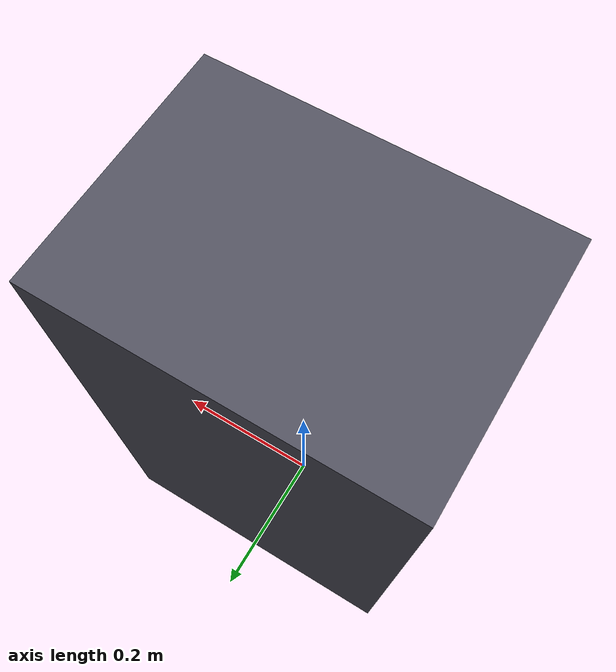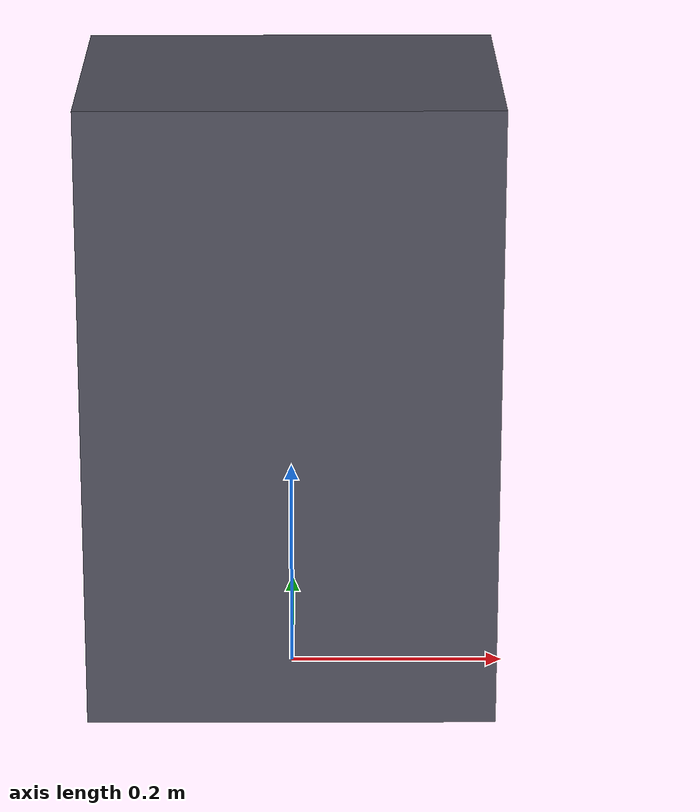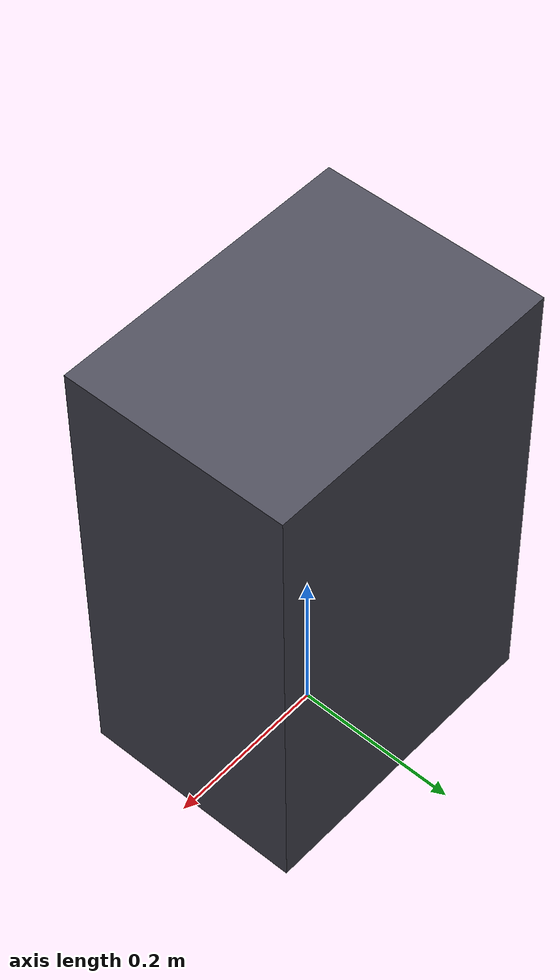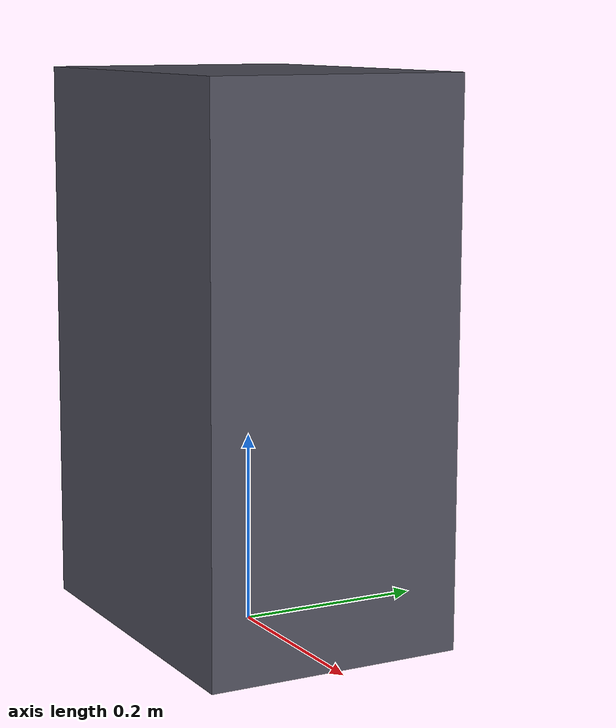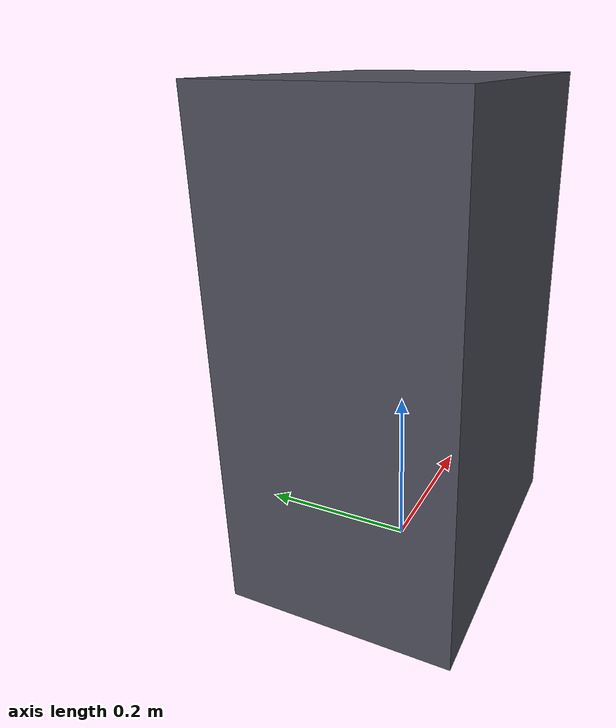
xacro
<?xml version="1.0"?>
<robot name="earthrover" xmlns="http://www.ros.org/wiki/urdf" xmlns:xacro="http://www.ros.org/wiki/xacro">
    <xacro:property name="body_length" value="0.375"/>
    <xacro:property name="body_width" value="0.273"/>
    <xacro:property name="body_height" value="0.58"/>
    <xacro:property name="wheel_radius" value="0.055"/>
    <xacro:property name="wheel_width" value="0.03"/>

    <link name="base_link">
        <visual>
            <origin xyz="0 0 ${body_height / 2}" rpy="0 0 0"/>
            <geometry>
                <box size="${body_length} ${body_width} ${body_height}"/>
            </geometry>
            <material name="grey"><color rgba="0.3 0.3 0.35 1.0"/></material>
        </visual>
    </link>

    <link name="front_camera_link"/>
    <joint name="front_camera_joint" type="fixed">
        <parent link="base_link"/>
        <child link="front_camera_link"/>
        <origin xyz="0 0 ${.56 - body_height / 2}" rpy="0 0 0"/>
    </joint>

    <link name="front_camera_optical_frame"/>
    <joint name="front_camera_optical_joint" type="fixed">
        <parent link="front_camera_link"/>
        <child link="front_camera_optical_frame"/>
        <origin xyz="0 0 0" rpy="-1.5708 0 -1.5708"/>
    </joint>

    <link name="rear_camera_link"/>
    <joint name="rear_camera_joint" type="fixed">
        <parent link="base_link"/>
        <child link="rear_camera_link"/>
        <origin xyz="0 0 ${.56 - body_height / 2}" rpy="0 0.1396 3.1416"/>
    </joint>

    <link name="rear_camera_optical_frame"/>
    <joint name="rear_camera_optical_joint" type="fixed">
        <parent link="rear_camera_link"/>
        <child link="rear_camera_optical_frame"/>
        <origin xyz="0 0 0" rpy="-1.5708 0 -1.5708"/>
    </joint>

    <link name="imu_link"/>
    <joint name="imu_joint" type="fixed">
        <parent link="base_link"/>
        <child link="imu_link"/>
        <origin xyz="0 0 0.02" rpy="0 -1.5708 0"/>
    </joint>

    <link name="gps_link"/>
    <joint name="gps_joint" type="fixed">
        <parent link="base_link"/>
        <child link="gps_link"/>
        <origin xyz="0 0 0" rpy="0 0 0"/>
    </joint>
</robot>
